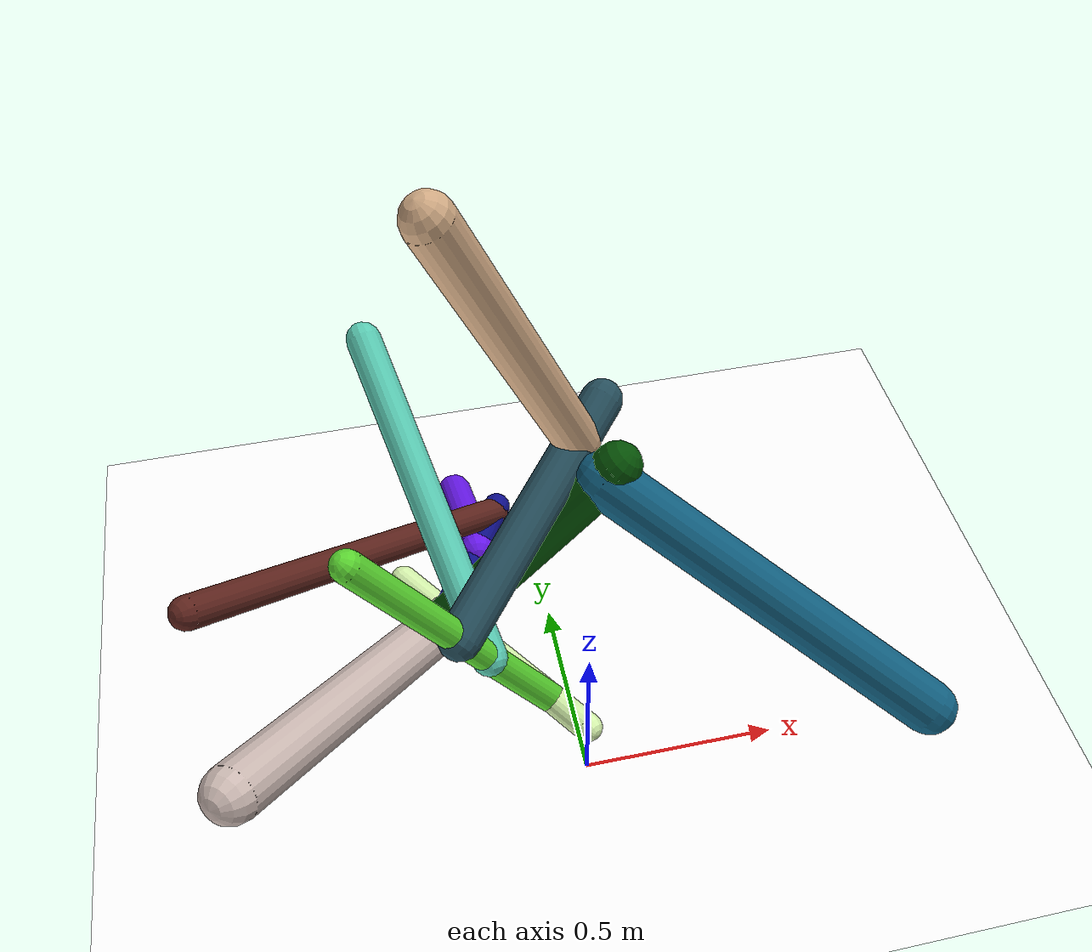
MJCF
<mujoco model="morphology">
  <option timestep="0.01"/>
  <default>
    <default class="/"/>
    <default class="0/"/>
    <default class="0/1/"/>
    <default class="0/1/2/"/>
    <default class="0/1/2/3/"/>
    <default class="0/1/2/3/4/"/>
    <default class="0/1/2/3/5/"/>
    <default class="0/1/2/6/"/>
    <default class="0/7/"/>
    <default class="0/7/8/"/>
    <default class="0/7/8/9/"/>
    <default class="0/7/10/"/>
  </default>
  <asset>
    <texture name="texplane" type="2d" builtin="checker" rgb1="0.10000000000000001 0.20000000000000001 0.29999999999999999" rgb2="0.20000000000000001 0.29999999999999999 0.40000000000000002" width="300" height="300"/>
    <material name="MatPlane" class="/" texture="texplane" texrepeat="20 20" specular="1" shininess="1" reflectance="0.5"/>
  </asset>
  <worldbody>
    <light name="//unnamed_light_0" class="/" directional="true" pos="0 0 1.5" dir="0 0 -1.3" cutoff="100" exponent="1" diffuse="1 1 1" specular="0.10000000000000001 0.10000000000000001 0.10000000000000001"/>
    <geom name="ground" class="/" type="plane" size="15 15 0.5" material="MatPlane" rgba="1 1 1 1"/>
    <site name="body" class="/" size="9.9999999999999995e-07 9.9999999999999995e-07 9.9999999999999995e-07" pos="0 0 0.20521709918975831"/>
    <body pos="0 0 0.20521709918975831" name="0/">
      <freejoint name="0/"/>
      <geom name="0/geom" class="0/" type="capsule" contype="1" conaffinity="1" condim="3" size="0.03681931337282851" rgba="0.85923939258421678 0.97589452948175515 0.69292172776403183 1" friction="0.59999999999999998 0.10000000000000001 0.10000000000000001" fromto="0 0 0 -0.38850892889174132 0.60177959244967072 -0.05807632907898852"/>
      <site name="0/end0" class="0/" size="0.0050000000000000001" pos="-0.38850892889174132 0.60177959244967072 -0.05807632907898852"/>
      <site name="0/attach1" class="0/" size="9.9999999999999995e-07 9.9999999999999995e-07 9.9999999999999995e-07" pos="-0.27971425644922404 0.43326245223898352 -0.041813137350458059"/>
      <body pos="-0.27971425644922404 0.43326245223898352 -0.041813137350458059" name="0/1/">
        <geom name="0/1/geom" class="0/1/" type="capsule" contype="1" conaffinity="1" condim="3" size="0.06792661800124826" rgba="0.81346469129430599 0.73968356343569996 0.71376137789149152 1" friction="0.59999999999999998 0.10000000000000001 0.10000000000000001" fromto="0 0 0 -0.52342623539144784 -0.60969744407298776 0.3766990335571645"/>
        <site name="0/1/end1" class="0/1/" size="0.0050000000000000001" pos="-0.52342623539144784 -0.60969744407298776 0.3766990335571645"/>
        <site name="0/1/attach2" class="0/1/" size="9.9999999999999995e-07 9.9999999999999995e-07 9.9999999999999995e-07" pos="-0.040007333051073103 -0.046601349065306295 0.028792449970086238"/>
        <body pos="-0.040007333051073103 -0.046601349065306295 0.028792449970086238" name="0/1/2/">
          <joint name="0/1/2/joint/" class="0/1/" type="hinge" axis="0.80755370355721112 -0.50175099391716582 0.31000476766360952" limited="true" range="-34.871120107134416 34.871120107134416"/>
          <geom name="0/1/2/geom" class="0/1/2/" type="capsule" contype="1" conaffinity="1" condim="3" size="0.060870865166387761" rgba="0.023542326546109993 0.32599305827302327 0.02748845772285291 1" friction="0.59999999999999998 0.10000000000000001 0.10000000000000001" fromto="0 0 0 0.47678412314241703 0.0046357159093385336 0.51920237803253189"/>
          <site name="0/1/2/end2" class="0/1/2/" size="0.0050000000000000001" pos="0.47678412314241703 0.0046357159093385336 0.51920237803253189"/>
          <site name="0/1/2/attach3" class="0/1/2/" size="9.9999999999999995e-07 9.9999999999999995e-07 9.9999999999999995e-07" pos="0.0056764099246802997 5.519106555464613e-05 0.0061814254890805928"/>
          <body pos="0.0056764099246802997 5.519106555464613e-05 0.0061814254890805928" name="0/1/2/3/">
            <joint name="0/1/2/3/joint/" class="0/1/2/" type="hinge" axis="0 -0.99996014302632286 0.0089281777970611764" limited="true" range="-61.320929063815299 61.320929063815299"/>
            <geom name="0/1/2/3/geom" class="0/1/2/3/" type="capsule" contype="1" conaffinity="1" condim="3" size="0.036882463440881065" rgba="0.066123213500567157 0.065709663585472811 0.56534308985759141 1" friction="0.59999999999999998 0.10000000000000001 0.10000000000000001" fromto="0 0 0 0.20994772339606427 0.29672885493106982 0.094177056037363593"/>
            <site name="0/1/2/3/end3" class="0/1/2/3/" size="0.0050000000000000001" pos="0.20994772339606427 0.29672885493106982 0.094177056037363593"/>
            <site name="0/1/2/3/attach4" class="0/1/2/3/" size="9.9999999999999995e-07 9.9999999999999995e-07 9.9999999999999995e-07" pos="0.1341449745797767 0.18959331426863571 0.060173926079196409"/>
            <body pos="0.1341449745797767 0.18959331426863571 0.060173926079196409" name="0/1/2/3/4/">
              <geom name="0/1/2/3/4/geom" class="0/1/2/3/4/" type="capsule" contype="1" conaffinity="1" condim="3" size="0.048271634960262932" rgba="0.41706597729978778 0.098219763319862152 0.94230304801746867 1" friction="0.59999999999999998 0.10000000000000001 0.10000000000000001" fromto="0 0 0 -0.016711556756946688 0.3595681065619496 -0.15855176074728816"/>
              <site name="0/1/2/3/4/end4" class="0/1/2/3/4/" size="0.0050000000000000001" pos="-0.016711556756946688 0.3595681065619496 -0.15855176074728816"/>
            </body>
            <site name="0/1/2/3/attach5" class="0/1/2/3/" size="9.9999999999999995e-07 9.9999999999999995e-07 9.9999999999999995e-07" pos="0.20049175729270627 0.28336429946588287 0.089935357031543123"/>
            <body pos="0.20049175729270627 0.28336429946588287 0.089935357031543123" name="0/1/2/3/5/">
              <joint name="0/1/2/3/5/joint/" class="0/1/2/3/" type="hinge" axis="2.7755575615628914e-17 -0.30251323997558693 0.95314518287586869" limited="true" range="-68.004100232386762 68.004100232386762"/>
              <geom name="0/1/2/3/5/geom" class="0/1/2/3/5/" type="capsule" contype="1" conaffinity="1" condim="3" size="0.03890877162663145" rgba="0.37372594249523683 0.14456741262554729 0.1178502841731478 1" friction="0.59999999999999998 0.10000000000000001 0.10000000000000001" fromto="0 0 0 -0.72053446267107646 -0.52380386788224764 0.46462589357406348"/>
              <site name="0/1/2/3/5/end5" class="0/1/2/3/5/" size="0.0050000000000000001" pos="-0.72053446267107646 -0.52380386788224764 0.46462589357406348"/>
            </body>
          </body>
          <site name="0/1/2/attach6" class="0/1/2/" size="9.9999999999999995e-07 9.9999999999999995e-07 9.9999999999999995e-07" pos="0.44184914940916037 0.004296047271758488 0.48115932970436237"/>
          <body pos="0.44184914940916037 0.004296047271758488 0.48115932970436237" name="0/1/2/6/">
            <joint name="0/1/2/6/joint/" class="0/1/2/" type="hinge" axis="0 -0.99996014302632286 0.0089281777970611764" limited="true" range="-69.139814815668501 69.139814815668501"/>
            <geom name="0/1/2/6/geom" class="0/1/2/6/" type="capsule" contype="1" conaffinity="1" condim="3" size="0.069152246526282393" rgba="0.067412911856682078 0.37457863814916281 0.50255179238327174 1" friction="0.59999999999999998 0.10000000000000001 0.10000000000000001" fromto="0 0 0 0.71682837224018559 -0.53395069840472575 -0.44220618625740443"/>
            <site name="0/1/2/6/end6" class="0/1/2/6/" size="0.0050000000000000001" pos="0.71682837224018559 -0.53395069840472575 -0.44220618625740443"/>
          </body>
        </body>
      </body>
      <site name="0/attach7" class="0/" size="9.9999999999999995e-07 9.9999999999999995e-07 9.9999999999999995e-07" pos="-0.067986841009363683 0.10530798762145294 -0.010163025500505067"/>
      <body pos="-0.067986841009363683 0.10530798762145294 -0.010163025500505067" name="0/7/">
        <geom name="0/7/geom" class="0/7/" type="capsule" contype="1" conaffinity="1" condim="3" size="0.037395047948003871" rgba="0.36377084818756789 0.85115806677334804 0.19484738683559399 1" friction="0.59999999999999998 0.10000000000000001 0.10000000000000001" fromto="0 0 0 -0.41766540321105894 -0.0088097244132043784 0.68269747960794147"/>
        <site name="0/7/end7" class="0/7/" size="0.0050000000000000001" pos="-0.41766540321105894 -0.0088097244132043784 0.68269747960794147"/>
        <site name="0/7/attach8" class="0/7/" size="9.9999999999999995e-07 9.9999999999999995e-07 9.9999999999999995e-07" pos="-0.2120510746846567 -0.0044727466415302583 0.34660935074436966"/>
        <body pos="-0.2120510746846567 -0.0044727466415302583 0.34660935074436966" name="0/7/8/">
          <joint name="0/7/8/joint/" class="0/7/" type="hinge" axis="1.1102230246251565e-16 0.99991675008166703 0.012903213015266299" limited="true" range="-34.702551862840593 34.702551862840593"/>
          <geom name="0/7/8/geom" class="0/7/8/" type="capsule" contype="1" conaffinity="1" condim="3" size="0.052659020686182001" rgba="0.15257368324456022 0.31417430447910355 0.36849620953835305 1" friction="0.59999999999999998 0.10000000000000001 0.10000000000000001" fromto="0 0 0 0.44301331827429236 0.4847906033055378 0.19803398867671551"/>
          <site name="0/7/8/end8" class="0/7/8/" size="0.0050000000000000001" pos="0.44301331827429236 0.4847906033055378 0.19803398867671551"/>
          <site name="0/7/8/attach9" class="0/7/8/" size="9.9999999999999995e-07 9.9999999999999995e-07 9.9999999999999995e-07" pos="0.36429602366079211 0.39865006718145035 0.16284610789047735"/>
          <body pos="0.36429602366079211 0.39865006718145035 0.16284610789047735" name="0/7/8/9/">
            <joint name="0/7/8/9/joint/" class="0/7/8/" type="hinge" axis="-0.76345776285829903 0.59789670147198648 0.24423713620233939" limited="true" range="-68.288133282480445 68.288133282480445"/>
            <geom name="0/7/8/9/geom" class="0/7/8/9/" type="capsule" contype="1" conaffinity="1" condim="3" size="0.057044474827288694" rgba="0.83170401478123723 0.67748156143531713 0.52676934321103064 1" friction="0.59999999999999998 0.10000000000000001 0.10000000000000001" fromto="0 0 0 -0.30252403161275526 -0.083614192078556471 0.73463776746416176"/>
            <site name="0/7/8/9/end9" class="0/7/8/9/" size="0.0050000000000000001" pos="-0.30252403161275526 -0.083614192078556471 0.73463776746416176"/>
          </body>
        </body>
        <site name="0/7/attach10" class="0/7/" size="9.9999999999999995e-07 9.9999999999999995e-07 9.9999999999999995e-07" pos="-0.14844284713122893 -0.0031310722992220459 0.24263814245372389"/>
        <body pos="-0.14844284713122893 -0.0031310722992220459 0.24263814245372389" name="0/7/10/">
          <joint name="0/7/10/joint/" class="0/7/" type="hinge" axis="1.1102230246251565e-16 0.99991675008166703 0.012903213015266299" limited="true" range="-62.39062343712181 62.39062343712181"/>
          <geom name="0/7/10/geom" class="0/7/10/" type="capsule" contype="1" conaffinity="1" condim="3" size="0.043433660235503262" rgba="0.36186741495498875 0.81319967521220271 0.71652762688407379 1" friction="0.59999999999999998 0.10000000000000001 0.10000000000000001" fromto="0 0 0 -0.16346525287621261 0.73645763902505257 0.38040099782129522"/>
          <site name="0/7/10/end10" class="0/7/10/" size="0.0050000000000000001" pos="-0.16346525287621261 0.73645763902505257 0.38040099782129522"/>
        </body>
      </body>
      <camera name="0/iso" class="0/" mode="trackcom" pos="-2.2999999999999998 -2.2999999999999998 1" xyaxes="0.45000000000000001 -0.45000000000000001 0 0.29999999999999999 0.14999999999999999 0.93999999999999995"/>
    </body>
  </worldbody>
  <actuator>
    <motor name="0/1/2/motor" class="0/1/2/" ctrllimited="true" ctrlrange="-1 1" gear="84" joint="0/1/2/joint/"/>
    <motor name="0/1/2/3/motor" class="0/1/2/3/" ctrllimited="true" ctrlrange="-1 1" gear="82" joint="0/1/2/3/joint/"/>
    <motor name="0/1/2/3/5/motor" class="0/1/2/3/5/" ctrllimited="true" ctrlrange="-1 1" gear="95" joint="0/1/2/3/5/joint/"/>
    <motor name="0/1/2/6/motor" class="0/1/2/6/" ctrllimited="true" ctrlrange="-1 1" gear="77" joint="0/1/2/6/joint/"/>
    <motor name="0/7/8/motor" class="0/7/8/" ctrllimited="true" ctrlrange="-1 1" gear="70" joint="0/7/8/joint/"/>
    <motor name="0/7/8/9/motor" class="0/7/8/9/" ctrllimited="true" ctrlrange="-1 1" gear="71" joint="0/7/8/9/joint/"/>
    <motor name="0/7/10/motor" class="0/7/10/" ctrllimited="true" ctrlrange="-1 1" gear="81" joint="0/7/10/joint/"/>
  </actuator>
  <sensor>
    <subtreelinvel name="velocity" body="0/"/>
  </sensor>
</mujoco>
